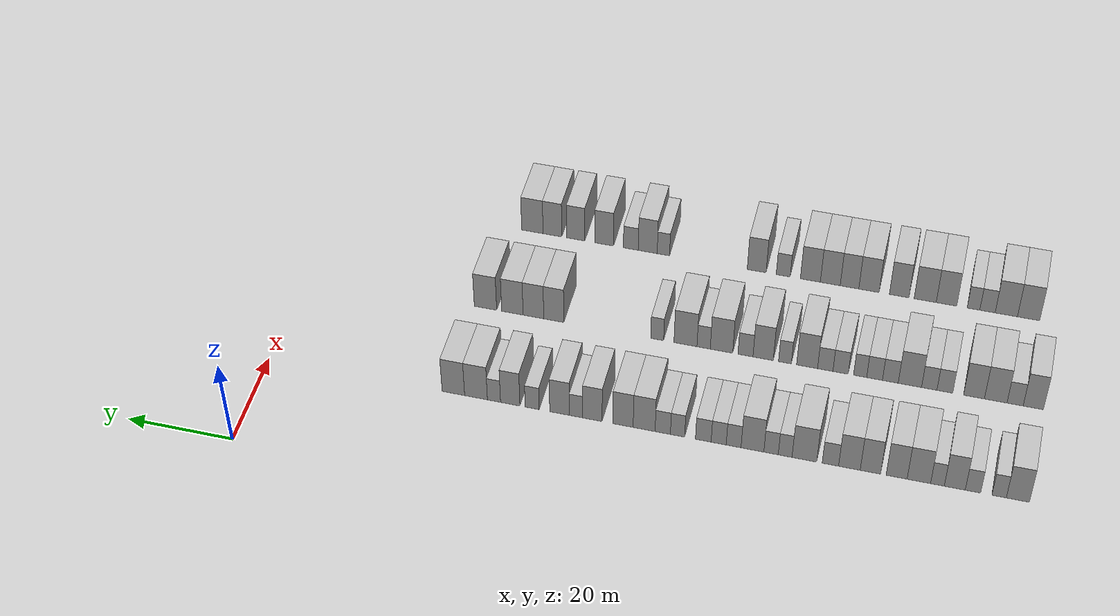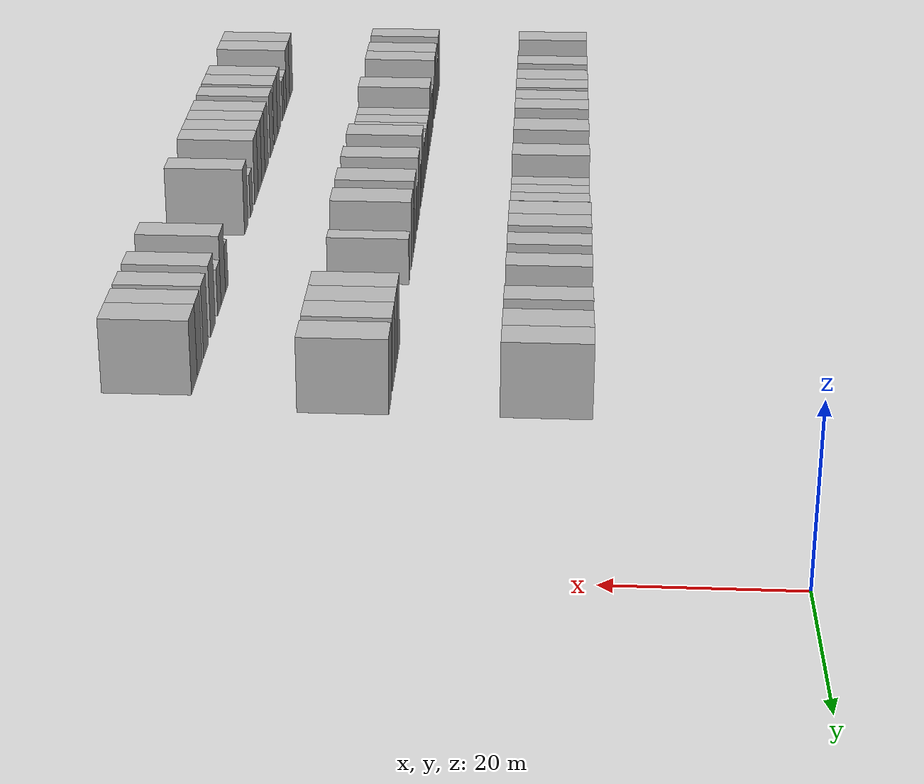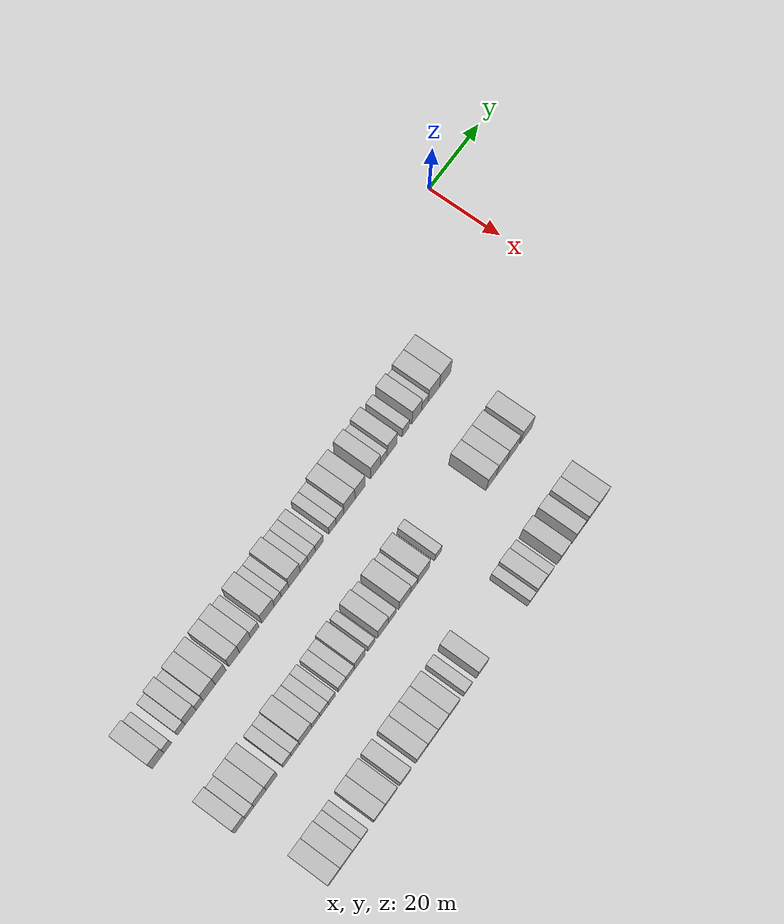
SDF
<sdf version="1.6">
 <world name="default">
  <model name="building_25">
   <static>1</static>
   <pose>25.0000 -139.9030 0 0.000000 0.000000 0.000000</pose>
   <link name="link">
    <pose>0 0 4.50 0 0 0</pose>
    <collision name="collision"><geometry><box><size>10.0000 4.0716 9.0000</size></box></geometry></collision>
    <visual name="visual">
     <cast_shadows>0</cast_shadows>
     <geometry><box><size>10.0000 4.0716 9.0000</size></box></geometry>
     <material>
      <script>
       <uri>model://HANNAS_wall/materials/scripts</uri>
       <uri>model://HANNAS_wall/materials/textures</uri>
       <name>vrc/HANNAS_wall</name>
      </script>
     </material>
    </visual>
   </link>
  </model>
  <model name="building_26">
   <static>1</static>
   <pose>25.0000 -136.5946 0 0.000000 0.000000 0.000000</pose>
   <link name="link">
    <pose>0 0 3.00 0 0 0</pose>
    <collision name="collision"><geometry><box><size>10.0000 2.5452 6.0000</size></box></geometry></collision>
    <visual name="visual">
     <cast_shadows>0</cast_shadows>
     <geometry><box><size>10.0000 2.5452 6.0000</size></box></geometry>
     <material>
      <script>
       <uri>model://HANNAS_wall/materials/scripts</uri>
       <uri>model://HANNAS_wall/materials/textures</uri>
       <name>vrc/HANNAS_wall</name>
      </script>
     </material>
    </visual>
   </link>
  </model>
  <model name="building_27">
   <static>1</static>
   <pose>25.0000 -131.9562 0 0.000000 0.000000 0.000000</pose>
   <link name="link">
    <pose>0 0 3.00 0 0 0</pose>
    <collision name="collision"><geometry><box><size>10.0000 2.7318 6.0000</size></box></geometry></collision>
    <visual name="visual">
     <cast_shadows>0</cast_shadows>
     <geometry><box><size>10.0000 2.7318 6.0000</size></box></geometry>
     <material>
      <script>
       <uri>model://HANNAS_wall/materials/scripts</uri>
       <uri>model://HANNAS_wall/materials/textures</uri>
       <name>vrc/HANNAS_wall</name>
      </script>
     </material>
    </visual>
   </link>
  </model>
  <model name="building_28">
   <static>1</static>
   <pose>25.0000 -128.7188 0 0.000000 0.000000 0.000000</pose>
   <link name="link">
    <pose>0 0 4.50 0 0 0</pose>
    <collision name="collision"><geometry><box><size>10.0000 3.7429 9.0000</size></box></geometry></collision>
    <visual name="visual">
     <cast_shadows>0</cast_shadows>
     <geometry><box><size>10.0000 3.7429 9.0000</size></box></geometry>
     <material>
      <script>
       <uri>model://HANNAS_wall/materials/scripts</uri>
       <uri>model://HANNAS_wall/materials/textures</uri>
       <name>vrc/HANNAS_wall</name>
      </script>
     </material>
    </visual>
   </link>
  </model>
  <model name="building_29">
   <static>1</static>
   <pose>25.0000 -125.6237 0 0.000000 0.000000 0.000000</pose>
   <link name="link">
    <pose>0 0 3.00 0 0 0</pose>
    <collision name="collision"><geometry><box><size>10.0000 2.4472 6.0000</size></box></geometry></collision>
    <visual name="visual">
     <cast_shadows>0</cast_shadows>
     <geometry><box><size>10.0000 2.4472 6.0000</size></box></geometry>
     <material>
      <script>
       <uri>model://HANNAS_wall/materials/scripts</uri>
       <uri>model://HANNAS_wall/materials/textures</uri>
       <name>vrc/HANNAS_wall</name>
      </script>
     </material>
    </visual>
   </link>
  </model>
  <model name="building_30">
   <static>1</static>
   <pose>25.0000 -122.2991 0 0.000000 0.000000 0.000000</pose>
   <link name="link">
    <pose>0 0 4.50 0 0 0</pose>
    <collision name="collision"><geometry><box><size>10.0000 4.2020 9.0000</size></box></geometry></collision>
    <visual name="visual">
     <cast_shadows>0</cast_shadows>
     <geometry><box><size>10.0000 4.2020 9.0000</size></box></geometry>
     <material>
      <script>
       <uri>model://HANNAS_wall/materials/scripts</uri>
       <uri>model://HANNAS_wall/materials/textures</uri>
       <name>vrc/HANNAS_wall</name>
      </script>
     </material>
    </visual>
   </link>
  </model>
  <model name="building_31">
   <static>1</static>
   <pose>25.0000 -118.3108 0 0.000000 0.000000 0.000000</pose>
   <link name="link">
    <pose>0 0 4.50 0 0 0</pose>
    <collision name="collision"><geometry><box><size>10.0000 3.7748 9.0000</size></box></geometry></collision>
    <visual name="visual">
     <cast_shadows>0</cast_shadows>
     <geometry><box><size>10.0000 3.7748 9.0000</size></box></geometry>
     <material>
      <script>
       <uri>model://HANNAS_wall/materials/scripts</uri>
       <uri>model://HANNAS_wall/materials/textures</uri>
       <name>vrc/HANNAS_wall</name>
      </script>
     </material>
    </visual>
   </link>
  </model>
  <model name="building_32">
   <static>1</static>
   <pose>25.0000 -113.5876 0 0.000000 0.000000 0.000000</pose>
   <link name="link">
    <pose>0 0 4.50 0 0 0</pose>
    <collision name="collision"><geometry><box><size>10.0000 3.6714 9.0000</size></box></geometry></collision>
    <visual name="visual">
     <cast_shadows>0</cast_shadows>
     <geometry><box><size>10.0000 3.6714 9.0000</size></box></geometry>
     <material>
      <script>
       <uri>model://HANNAS_wall/materials/scripts</uri>
       <uri>model://HANNAS_wall/materials/textures</uri>
       <name>vrc/HANNAS_wall</name>
      </script>
     </material>
    </visual>
   </link>
  </model>
  <model name="building_33">
   <static>1</static>
   <pose>25.0000 -109.7929 0 0.000000 0.000000 0.000000</pose>
   <link name="link">
    <pose>0 0 4.50 0 0 0</pose>
    <collision name="collision"><geometry><box><size>10.0000 3.9181 9.0000</size></box></geometry></collision>
    <visual name="visual">
     <cast_shadows>0</cast_shadows>
     <geometry><box><size>10.0000 3.9181 9.0000</size></box></geometry>
     <material>
      <script>
       <uri>model://HANNAS_wall/materials/scripts</uri>
       <uri>model://HANNAS_wall/materials/textures</uri>
       <name>vrc/HANNAS_wall</name>
      </script>
     </material>
    </visual>
   </link>
  </model>
  <model name="building_34">
   <static>1</static>
   <pose>25.0000 -106.3459 0 0.000000 0.000000 0.000000</pose>
   <link name="link">
    <pose>0 0 3.00 0 0 0</pose>
    <collision name="collision"><geometry><box><size>10.0000 2.9760 6.0000</size></box></geometry></collision>
    <visual name="visual">
     <cast_shadows>0</cast_shadows>
     <geometry><box><size>10.0000 2.9760 6.0000</size></box></geometry>
     <material>
      <script>
       <uri>model://HANNAS_wall/materials/scripts</uri>
       <uri>model://HANNAS_wall/materials/textures</uri>
       <name>vrc/HANNAS_wall</name>
      </script>
     </material>
    </visual>
   </link>
  </model>
  <model name="building_35">
   <static>1</static>
   <pose>25.0000 -101.6116 0 0.000000 0.000000 0.000000</pose>
   <link name="link">
    <pose>0 0 4.50 0 0 0</pose>
    <collision name="collision"><geometry><box><size>10.0000 4.4926 9.0000</size></box></geometry></collision>
    <visual name="visual">
     <cast_shadows>0</cast_shadows>
     <geometry><box><size>10.0000 4.4926 9.0000</size></box></geometry>
     <material>
      <script>
       <uri>model://HANNAS_wall/materials/scripts</uri>
       <uri>model://HANNAS_wall/materials/textures</uri>
       <name>vrc/HANNAS_wall</name>
      </script>
     </material>
    </visual>
   </link>
  </model>
  <model name="building_36">
   <static>1</static>
   <pose>25.0000 -98.1097 0 0.000000 0.000000 0.000000</pose>
   <link name="link">
    <pose>0 0 3.00 0 0 0</pose>
    <collision name="collision"><geometry><box><size>10.0000 2.5113 6.0000</size></box></geometry></collision>
    <visual name="visual">
     <cast_shadows>0</cast_shadows>
     <geometry><box><size>10.0000 2.5113 6.0000</size></box></geometry>
     <material>
      <script>
       <uri>model://HANNAS_wall/materials/scripts</uri>
       <uri>model://HANNAS_wall/materials/textures</uri>
       <name>vrc/HANNAS_wall</name>
      </script>
     </material>
    </visual>
   </link>
  </model>
  <model name="building_37">
   <static>1</static>
   <pose>25.0000 -95.5361 0 0.000000 0.000000 0.000000</pose>
   <link name="link">
    <pose>0 0 3.00 0 0 0</pose>
    <collision name="collision"><geometry><box><size>10.0000 2.6359 6.0000</size></box></geometry></collision>
    <visual name="visual">
     <cast_shadows>0</cast_shadows>
     <geometry><box><size>10.0000 2.6359 6.0000</size></box></geometry>
     <material>
      <script>
       <uri>model://HANNAS_wall/materials/scripts</uri>
       <uri>model://HANNAS_wall/materials/textures</uri>
       <name>vrc/HANNAS_wall</name>
      </script>
     </material>
    </visual>
   </link>
  </model>
  <model name="building_38">
   <static>1</static>
   <pose>25.0000 -92.1232 0 0.000000 0.000000 0.000000</pose>
   <link name="link">
    <pose>0 0 4.50 0 0 0</pose>
    <collision name="collision"><geometry><box><size>10.0000 4.1899 9.0000</size></box></geometry></collision>
    <visual name="visual">
     <cast_shadows>0</cast_shadows>
     <geometry><box><size>10.0000 4.1899 9.0000</size></box></geometry>
     <material>
      <script>
       <uri>model://HANNAS_wall/materials/scripts</uri>
       <uri>model://HANNAS_wall/materials/textures</uri>
       <name>vrc/HANNAS_wall</name>
      </script>
     </material>
    </visual>
   </link>
  </model>
  <model name="building_39">
   <static>1</static>
   <pose>25.0000 -88.6636 0 0.000000 0.000000 0.000000</pose>
   <link name="link">
    <pose>0 0 3.00 0 0 0</pose>
    <collision name="collision"><geometry><box><size>10.0000 2.7293 6.0000</size></box></geometry></collision>
    <visual name="visual">
     <cast_shadows>0</cast_shadows>
     <geometry><box><size>10.0000 2.7293 6.0000</size></box></geometry>
     <material>
      <script>
       <uri>model://HANNAS_wall/materials/scripts</uri>
       <uri>model://HANNAS_wall/materials/textures</uri>
       <name>vrc/HANNAS_wall</name>
      </script>
     </material>
    </visual>
   </link>
  </model>
  <model name="building_40">
   <static>1</static>
   <pose>25.0000 -85.9057 0 0.000000 0.000000 0.000000</pose>
   <link name="link">
    <pose>0 0 3.00 0 0 0</pose>
    <collision name="collision"><geometry><box><size>10.0000 2.7864 6.0000</size></box></geometry></collision>
    <visual name="visual">
     <cast_shadows>0</cast_shadows>
     <geometry><box><size>10.0000 2.7864 6.0000</size></box></geometry>
     <material>
      <script>
       <uri>model://HANNAS_wall/materials/scripts</uri>
       <uri>model://HANNAS_wall/materials/textures</uri>
       <name>vrc/HANNAS_wall</name>
      </script>
     </material>
    </visual>
   </link>
  </model>
  <model name="building_41">
   <static>1</static>
   <pose>25.0000 -83.0607 0 0.000000 0.000000 0.000000</pose>
   <link name="link">
    <pose>0 0 3.00 0 0 0</pose>
    <collision name="collision"><geometry><box><size>10.0000 2.9037 6.0000</size></box></geometry></collision>
    <visual name="visual">
     <cast_shadows>0</cast_shadows>
     <geometry><box><size>10.0000 2.9037 6.0000</size></box></geometry>
     <material>
      <script>
       <uri>model://HANNAS_wall/materials/scripts</uri>
       <uri>model://HANNAS_wall/materials/textures</uri>
       <name>vrc/HANNAS_wall</name>
      </script>
     </material>
    </visual>
   </link>
  </model>
  <model name="building_42">
   <static>1</static>
   <pose>25.0000 -78.2863 0 0.000000 0.000000 0.000000</pose>
   <link name="link">
    <pose>0 0 3.00 0 0 0</pose>
    <collision name="collision"><geometry><box><size>10.0000 2.6452 6.0000</size></box></geometry></collision>
    <visual name="visual">
     <cast_shadows>0</cast_shadows>
     <geometry><box><size>10.0000 2.6452 6.0000</size></box></geometry>
     <material>
      <script>
       <uri>model://HANNAS_wall/materials/scripts</uri>
       <uri>model://HANNAS_wall/materials/textures</uri>
       <name>vrc/HANNAS_wall</name>
      </script>
     </material>
    </visual>
   </link>
  </model>
  <model name="building_43">
   <static>1</static>
   <pose>25.0000 -75.5401 0 0.000000 0.000000 0.000000</pose>
   <link name="link">
    <pose>0 0 3.00 0 0 0</pose>
    <collision name="collision"><geometry><box><size>10.0000 2.8470 6.0000</size></box></geometry></collision>
    <visual name="visual">
     <cast_shadows>0</cast_shadows>
     <geometry><box><size>10.0000 2.8470 6.0000</size></box></geometry>
     <material>
      <script>
       <uri>model://HANNAS_wall/materials/scripts</uri>
       <uri>model://HANNAS_wall/materials/textures</uri>
       <name>vrc/HANNAS_wall</name>
      </script>
     </material>
    </visual>
   </link>
  </model>
  <model name="building_44">
   <static>1</static>
   <pose>25.0000 -72.0647 0 0.000000 0.000000 0.000000</pose>
   <link name="link">
    <pose>0 0 4.50 0 0 0</pose>
    <collision name="collision"><geometry><box><size>10.0000 4.1038 9.0000</size></box></geometry></collision>
    <visual name="visual">
     <cast_shadows>0</cast_shadows>
     <geometry><box><size>10.0000 4.1038 9.0000</size></box></geometry>
     <material>
      <script>
       <uri>model://HANNAS_wall/materials/scripts</uri>
       <uri>model://HANNAS_wall/materials/textures</uri>
       <name>vrc/HANNAS_wall</name>
      </script>
     </material>
    </visual>
   </link>
  </model>
  <model name="building_45">
   <static>1</static>
   <pose>25.0000 -68.1016 0 0.000000 0.000000 0.000000</pose>
   <link name="link">
    <pose>0 0 4.50 0 0 0</pose>
    <collision name="collision"><geometry><box><size>10.0000 3.8224 9.0000</size></box></geometry></collision>
    <visual name="visual">
     <cast_shadows>0</cast_shadows>
     <geometry><box><size>10.0000 3.8224 9.0000</size></box></geometry>
     <material>
      <script>
       <uri>model://HANNAS_wall/materials/scripts</uri>
       <uri>model://HANNAS_wall/materials/textures</uri>
       <name>vrc/HANNAS_wall</name>
      </script>
     </material>
    </visual>
   </link>
  </model>
  <model name="building_46">
   <static>1</static>
   <pose>25.0000 -62.3664 0 0.000000 0.000000 0.000000</pose>
   <link name="link">
    <pose>0 0 4.50 0 0 0</pose>
    <collision name="collision"><geometry><box><size>10.0000 3.6479 9.0000</size></box></geometry></collision>
    <visual name="visual">
     <cast_shadows>0</cast_shadows>
     <geometry><box><size>10.0000 3.6479 9.0000</size></box></geometry>
     <material>
      <script>
       <uri>model://HANNAS_wall/materials/scripts</uri>
       <uri>model://HANNAS_wall/materials/textures</uri>
       <name>vrc/HANNAS_wall</name>
      </script>
     </material>
    </visual>
   </link>
  </model>
  <model name="building_47">
   <static>1</static>
   <pose>25.0000 -59.2812 0 0.000000 0.000000 0.000000</pose>
   <link name="link">
    <pose>0 0 3.00 0 0 0</pose>
    <collision name="collision"><geometry><box><size>10.0000 2.5225 6.0000</size></box></geometry></collision>
    <visual name="visual">
     <cast_shadows>0</cast_shadows>
     <geometry><box><size>10.0000 2.5225 6.0000</size></box></geometry>
     <material>
      <script>
       <uri>model://HANNAS_wall/materials/scripts</uri>
       <uri>model://HANNAS_wall/materials/textures</uri>
       <name>vrc/HANNAS_wall</name>
      </script>
     </material>
    </visual>
   </link>
  </model>
  <model name="building_48">
   <static>1</static>
   <pose>25.0000 -56.1685 0 0.000000 0.000000 0.000000</pose>
   <link name="link">
    <pose>0 0 4.50 0 0 0</pose>
    <collision name="collision"><geometry><box><size>10.0000 3.7029 9.0000</size></box></geometry></collision>
    <visual name="visual">
     <cast_shadows>0</cast_shadows>
     <geometry><box><size>10.0000 3.7029 9.0000</size></box></geometry>
     <material>
      <script>
       <uri>model://HANNAS_wall/materials/scripts</uri>
       <uri>model://HANNAS_wall/materials/textures</uri>
       <name>vrc/HANNAS_wall</name>
      </script>
     </material>
    </visual>
   </link>
  </model>
  <model name="building_49">
   <static>1</static>
   <pose>25.0000 -50.9868 0 0.000000 0.000000 0.000000</pose>
   <link name="link">
    <pose>0 0 3.00 0 0 0</pose>
    <collision name="collision"><geometry><box><size>10.0000 2.6606 6.0000</size></box></geometry></collision>
    <visual name="visual">
     <cast_shadows>0</cast_shadows>
     <geometry><box><size>10.0000 2.6606 6.0000</size></box></geometry>
     <material>
      <script>
       <uri>model://HANNAS_wall/materials/scripts</uri>
       <uri>model://HANNAS_wall/materials/textures</uri>
       <name>vrc/HANNAS_wall</name>
      </script>
     </material>
    </visual>
   </link>
  </model>
  <model name="building_50">
   <static>1</static>
   <pose>25.0000 -46.8098 0 0.000000 0.000000 0.000000</pose>
   <link name="link">
    <pose>0 0 4.50 0 0 0</pose>
    <collision name="collision"><geometry><box><size>10.0000 3.6933 9.0000</size></box></geometry></collision>
    <visual name="visual">
     <cast_shadows>0</cast_shadows>
     <geometry><box><size>10.0000 3.6933 9.0000</size></box></geometry>
     <material>
      <script>
       <uri>model://HANNAS_wall/materials/scripts</uri>
       <uri>model://HANNAS_wall/materials/textures</uri>
       <name>vrc/HANNAS_wall</name>
      </script>
     </material>
    </visual>
   </link>
  </model>
  <model name="building_51">
   <static>1</static>
   <pose>25.0000 -43.7116 0 0.000000 0.000000 0.000000</pose>
   <link name="link">
    <pose>0 0 3.00 0 0 0</pose>
    <collision name="collision"><geometry><box><size>10.0000 2.5031 6.0000</size></box></geometry></collision>
    <visual name="visual">
     <cast_shadows>0</cast_shadows>
     <geometry><box><size>10.0000 2.5031 6.0000</size></box></geometry>
     <material>
      <script>
       <uri>model://HANNAS_wall/materials/scripts</uri>
       <uri>model://HANNAS_wall/materials/textures</uri>
       <name>vrc/HANNAS_wall</name>
      </script>
     </material>
    </visual>
   </link>
  </model>
  <model name="building_52">
   <static>1</static>
   <pose>25.0000 -40.2781 0 0.000000 0.000000 0.000000</pose>
   <link name="link">
    <pose>0 0 4.50 0 0 0</pose>
    <collision name="collision"><geometry><box><size>10.0000 4.3639 9.0000</size></box></geometry></collision>
    <visual name="visual">
     <cast_shadows>0</cast_shadows>
     <geometry><box><size>10.0000 4.3639 9.0000</size></box></geometry>
     <material>
      <script>
       <uri>model://HANNAS_wall/materials/scripts</uri>
       <uri>model://HANNAS_wall/materials/textures</uri>
       <name>vrc/HANNAS_wall</name>
      </script>
     </material>
    </visual>
   </link>
  </model>
  <model name="building_53">
   <static>1</static>
   <pose>25.0000 -35.9338 0 0.000000 0.000000 0.000000</pose>
   <link name="link">
    <pose>0 0 4.50 0 0 0</pose>
    <collision name="collision"><geometry><box><size>10.0000 4.3248 9.0000</size></box></geometry></collision>
    <visual name="visual">
     <cast_shadows>0</cast_shadows>
     <geometry><box><size>10.0000 4.3248 9.0000</size></box></geometry>
     <material>
      <script>
       <uri>model://HANNAS_wall/materials/scripts</uri>
       <uri>model://HANNAS_wall/materials/textures</uri>
       <name>vrc/HANNAS_wall</name>
      </script>
     </material>
    </visual>
   </link>
  </model>
  <model name="building_147">
   <static>1</static>
   <pose>47.0000 -140.3884 0 0.000000 0.000000 0.000000</pose>
   <link name="link">
    <pose>0 0 4.50 0 0 0</pose>
    <collision name="collision"><geometry><box><size>10.0000 3.7102 9.0000</size></box></geometry></collision>
    <visual name="visual">
     <cast_shadows>0</cast_shadows>
     <geometry><box><size>10.0000 3.7102 9.0000</size></box></geometry>
     <material>
      <script>
       <uri>model://HANNAS_wall/materials/scripts</uri>
       <uri>model://HANNAS_wall/materials/textures</uri>
       <name>vrc/HANNAS_wall</name>
      </script>
     </material>
    </visual>
   </link>
  </model>
  <model name="building_148">
   <static>1</static>
   <pose>47.0000 -137.0513 0 0.000000 0.000000 0.000000</pose>
   <link name="link">
    <pose>0 0 3.00 0 0 0</pose>
    <collision name="collision"><geometry><box><size>10.0000 2.9640 6.0000</size></box></geometry></collision>
    <visual name="visual">
     <cast_shadows>0</cast_shadows>
     <geometry><box><size>10.0000 2.9640 6.0000</size></box></geometry>
     <material>
      <script>
       <uri>model://HANNAS_wall/materials/scripts</uri>
       <uri>model://HANNAS_wall/materials/textures</uri>
       <name>vrc/HANNAS_wall</name>
      </script>
     </material>
    </visual>
   </link>
  </model>
  <model name="building_149">
   <static>1</static>
   <pose>47.0000 -133.4928 0 0.000000 0.000000 0.000000</pose>
   <link name="link">
    <pose>0 0 4.50 0 0 0</pose>
    <collision name="collision"><geometry><box><size>10.0000 4.1530 9.0000</size></box></geometry></collision>
    <visual name="visual">
     <cast_shadows>0</cast_shadows>
     <geometry><box><size>10.0000 4.1530 9.0000</size></box></geometry>
     <material>
      <script>
       <uri>model://HANNAS_wall/materials/scripts</uri>
       <uri>model://HANNAS_wall/materials/textures</uri>
       <name>vrc/HANNAS_wall</name>
      </script>
     </material>
    </visual>
   </link>
  </model>
  <model name="building_150">
   <static>1</static>
   <pose>47.0000 -129.4914 0 0.000000 0.000000 0.000000</pose>
   <link name="link">
    <pose>0 0 4.50 0 0 0</pose>
    <collision name="collision"><geometry><box><size>10.0000 3.8499 9.0000</size></box></geometry></collision>
    <visual name="visual">
     <cast_shadows>0</cast_shadows>
     <geometry><box><size>10.0000 3.8499 9.0000</size></box></geometry>
     <material>
      <script>
       <uri>model://HANNAS_wall/materials/scripts</uri>
       <uri>model://HANNAS_wall/materials/textures</uri>
       <name>vrc/HANNAS_wall</name>
      </script>
     </material>
    </visual>
   </link>
  </model>
  <model name="building_151">
   <static>1</static>
   <pose>47.0000 -124.1032 0 0.000000 0.000000 0.000000</pose>
   <link name="link">
    <pose>0 0 3.00 0 0 0</pose>
    <collision name="collision"><geometry><box><size>10.0000 2.9266 6.0000</size></box></geometry></collision>
    <visual name="visual">
     <cast_shadows>0</cast_shadows>
     <geometry><box><size>10.0000 2.9266 6.0000</size></box></geometry>
     <material>
      <script>
       <uri>model://HANNAS_wall/materials/scripts</uri>
       <uri>model://HANNAS_wall/materials/textures</uri>
       <name>vrc/HANNAS_wall</name>
      </script>
     </material>
    </visual>
   </link>
  </model>
  <model name="building_152">
   <static>1</static>
   <pose>47.0000 -121.2081 0 0.000000 0.000000 0.000000</pose>
   <link name="link">
    <pose>0 0 3.00 0 0 0</pose>
    <collision name="collision"><geometry><box><size>10.0000 2.8635 6.0000</size></box></geometry></collision>
    <visual name="visual">
     <cast_shadows>0</cast_shadows>
     <geometry><box><size>10.0000 2.8635 6.0000</size></box></geometry>
     <material>
      <script>
       <uri>model://HANNAS_wall/materials/scripts</uri>
       <uri>model://HANNAS_wall/materials/textures</uri>
       <name>vrc/HANNAS_wall</name>
      </script>
     </material>
    </visual>
   </link>
  </model>
  <model name="building_153">
   <static>1</static>
   <pose>47.0000 -117.6011 0 0.000000 0.000000 0.000000</pose>
   <link name="link">
    <pose>0 0 4.50 0 0 0</pose>
    <collision name="collision"><geometry><box><size>10.0000 4.3505 9.0000</size></box></geometry></collision>
    <visual name="visual">
     <cast_shadows>0</cast_shadows>
     <geometry><box><size>10.0000 4.3505 9.0000</size></box></geometry>
     <material>
      <script>
       <uri>model://HANNAS_wall/materials/scripts</uri>
       <uri>model://HANNAS_wall/materials/textures</uri>
       <name>vrc/HANNAS_wall</name>
      </script>
     </material>
    </visual>
   </link>
  </model>
  <model name="building_154">
   <static>1</static>
   <pose>47.0000 -113.9526 0 0.000000 0.000000 0.000000</pose>
   <link name="link">
    <pose>0 0 3.00 0 0 0</pose>
    <collision name="collision"><geometry><box><size>10.0000 2.9466 6.0000</size></box></geometry></collision>
    <visual name="visual">
     <cast_shadows>0</cast_shadows>
     <geometry><box><size>10.0000 2.9466 6.0000</size></box></geometry>
     <material>
      <script>
       <uri>model://HANNAS_wall/materials/scripts</uri>
       <uri>model://HANNAS_wall/materials/textures</uri>
       <name>vrc/HANNAS_wall</name>
      </script>
     </material>
    </visual>
   </link>
  </model>
  <model name="building_155">
   <static>1</static>
   <pose>47.0000 -111.0038 0 0.000000 0.000000 0.000000</pose>
   <link name="link">
    <pose>0 0 3.00 0 0 0</pose>
    <collision name="collision"><geometry><box><size>10.0000 2.9509 6.0000</size></box></geometry></collision>
    <visual name="visual">
     <cast_shadows>0</cast_shadows>
     <geometry><box><size>10.0000 2.9509 6.0000</size></box></geometry>
     <material>
      <script>
       <uri>model://HANNAS_wall/materials/scripts</uri>
       <uri>model://HANNAS_wall/materials/textures</uri>
       <name>vrc/HANNAS_wall</name>
      </script>
     </material>
    </visual>
   </link>
  </model>
  <model name="building_156">
   <static>1</static>
   <pose>47.0000 -108.2922 0 0.000000 0.000000 0.000000</pose>
   <link name="link">
    <pose>0 0 3.00 0 0 0</pose>
    <collision name="collision"><geometry><box><size>10.0000 2.4724 6.0000</size></box></geometry></collision>
    <visual name="visual">
     <cast_shadows>0</cast_shadows>
     <geometry><box><size>10.0000 2.4724 6.0000</size></box></geometry>
     <material>
      <script>
       <uri>model://HANNAS_wall/materials/scripts</uri>
       <uri>model://HANNAS_wall/materials/textures</uri>
       <name>vrc/HANNAS_wall</name>
      </script>
     </material>
    </visual>
   </link>
  </model>
  <model name="building_157">
   <static>1</static>
   <pose>47.0000 -104.6186 0 0.000000 0.000000 0.000000</pose>
   <link name="link">
    <pose>0 0 3.00 0 0 0</pose>
    <collision name="collision"><geometry><box><size>10.0000 2.8748 6.0000</size></box></geometry></collision>
    <visual name="visual">
     <cast_shadows>0</cast_shadows>
     <geometry><box><size>10.0000 2.8748 6.0000</size></box></geometry>
     <material>
      <script>
       <uri>model://HANNAS_wall/materials/scripts</uri>
       <uri>model://HANNAS_wall/materials/textures</uri>
       <name>vrc/HANNAS_wall</name>
      </script>
     </material>
    </visual>
   </link>
  </model>
  <model name="building_158">
   <static>1</static>
   <pose>47.0000 -101.7303 0 0.000000 0.000000 0.000000</pose>
   <link name="link">
    <pose>0 0 3.00 0 0 0</pose>
    <collision name="collision"><geometry><box><size>10.0000 2.9018 6.0000</size></box></geometry></collision>
    <visual name="visual">
     <cast_shadows>0</cast_shadows>
     <geometry><box><size>10.0000 2.9018 6.0000</size></box></geometry>
     <material>
      <script>
       <uri>model://HANNAS_wall/materials/scripts</uri>
       <uri>model://HANNAS_wall/materials/textures</uri>
       <name>vrc/HANNAS_wall</name>
      </script>
     </material>
    </visual>
   </link>
  </model>
  <model name="building_159">
   <static>1</static>
   <pose>47.0000 -98.2994 0 0.000000 0.000000 0.000000</pose>
   <link name="link">
    <pose>0 0 4.50 0 0 0</pose>
    <collision name="collision"><geometry><box><size>10.0000 3.9601 9.0000</size></box></geometry></collision>
    <visual name="visual">
     <cast_shadows>0</cast_shadows>
     <geometry><box><size>10.0000 3.9601 9.0000</size></box></geometry>
     <material>
      <script>
       <uri>model://HANNAS_wall/materials/scripts</uri>
       <uri>model://HANNAS_wall/materials/textures</uri>
       <name>vrc/HANNAS_wall</name>
      </script>
     </material>
    </visual>
   </link>
  </model>
  <model name="building_160">
   <static>1</static>
   <pose>47.0000 -94.1018 0 0.000000 0.000000 0.000000</pose>
   <link name="link">
    <pose>0 0 3.00 0 0 0</pose>
    <collision name="collision"><geometry><box><size>10.0000 2.4349 6.0000</size></box></geometry></collision>
    <visual name="visual">
     <cast_shadows>0</cast_shadows>
     <geometry><box><size>10.0000 2.4349 6.0000</size></box></geometry>
     <material>
      <script>
       <uri>model://HANNAS_wall/materials/scripts</uri>
       <uri>model://HANNAS_wall/materials/textures</uri>
       <name>vrc/HANNAS_wall</name>
      </script>
     </material>
    </visual>
   </link>
  </model>
  <model name="building_161">
   <static>1</static>
   <pose>47.0000 -89.9531 0 0.000000 0.000000 0.000000</pose>
   <link name="link">
    <pose>0 0 4.50 0 0 0</pose>
    <collision name="collision"><geometry><box><size>10.0000 3.8627 9.0000</size></box></geometry></collision>
    <visual name="visual">
     <cast_shadows>0</cast_shadows>
     <geometry><box><size>10.0000 3.8627 9.0000</size></box></geometry>
     <material>
      <script>
       <uri>model://HANNAS_wall/materials/scripts</uri>
       <uri>model://HANNAS_wall/materials/textures</uri>
       <name>vrc/HANNAS_wall</name>
      </script>
     </material>
    </visual>
   </link>
  </model>
  <model name="building_162">
   <static>1</static>
   <pose>47.0000 -86.5851 0 0.000000 0.000000 0.000000</pose>
   <link name="link">
    <pose>0 0 3.00 0 0 0</pose>
    <collision name="collision"><geometry><box><size>10.0000 2.8732 6.0000</size></box></geometry></collision>
    <visual name="visual">
     <cast_shadows>0</cast_shadows>
     <geometry><box><size>10.0000 2.8732 6.0000</size></box></geometry>
     <material>
      <script>
       <uri>model://HANNAS_wall/materials/scripts</uri>
       <uri>model://HANNAS_wall/materials/textures</uri>
       <name>vrc/HANNAS_wall</name>
      </script>
     </material>
    </visual>
   </link>
  </model>
  <model name="building_163">
   <static>1</static>
   <pose>47.0000 -81.9961 0 0.000000 0.000000 0.000000</pose>
   <link name="link">
    <pose>0 0 4.50 0 0 0</pose>
    <collision name="collision"><geometry><box><size>10.0000 4.3047 9.0000</size></box></geometry></collision>
    <visual name="visual">
     <cast_shadows>0</cast_shadows>
     <geometry><box><size>10.0000 4.3047 9.0000</size></box></geometry>
     <material>
      <script>
       <uri>model://HANNAS_wall/materials/scripts</uri>
       <uri>model://HANNAS_wall/materials/textures</uri>
       <name>vrc/HANNAS_wall</name>
      </script>
     </material>
    </visual>
   </link>
  </model>
  <model name="building_164">
   <static>1</static>
   <pose>47.0000 -78.5674 0 0.000000 0.000000 0.000000</pose>
   <link name="link">
    <pose>0 0 3.00 0 0 0</pose>
    <collision name="collision"><geometry><box><size>10.0000 2.5528 6.0000</size></box></geometry></collision>
    <visual name="visual">
     <cast_shadows>0</cast_shadows>
     <geometry><box><size>10.0000 2.5528 6.0000</size></box></geometry>
     <material>
      <script>
       <uri>model://HANNAS_wall/materials/scripts</uri>
       <uri>model://HANNAS_wall/materials/textures</uri>
       <name>vrc/HANNAS_wall</name>
      </script>
     </material>
    </visual>
   </link>
  </model>
  <model name="building_165">
   <static>1</static>
   <pose>47.0000 -75.0735 0 0.000000 0.000000 0.000000</pose>
   <link name="link">
    <pose>0 0 4.50 0 0 0</pose>
    <collision name="collision"><geometry><box><size>10.0000 4.4350 9.0000</size></box></geometry></collision>
    <visual name="visual">
     <cast_shadows>0</cast_shadows>
     <geometry><box><size>10.0000 4.4350 9.0000</size></box></geometry>
     <material>
      <script>
       <uri>model://HANNAS_wall/materials/scripts</uri>
       <uri>model://HANNAS_wall/materials/textures</uri>
       <name>vrc/HANNAS_wall</name>
      </script>
     </material>
    </visual>
   </link>
  </model>
  <model name="building_166">
   <static>1</static>
   <pose>47.0000 -69.6040 0 0.000000 0.000000 0.000000</pose>
   <link name="link">
    <pose>0 0 3.00 0 0 0</pose>
    <collision name="collision"><geometry><box><size>10.0000 2.5039 6.0000</size></box></geometry></collision>
    <visual name="visual">
     <cast_shadows>0</cast_shadows>
     <geometry><box><size>10.0000 2.5039 6.0000</size></box></geometry>
     <material>
      <script>
       <uri>model://HANNAS_wall/materials/scripts</uri>
       <uri>model://HANNAS_wall/materials/textures</uri>
       <name>vrc/HANNAS_wall</name>
      </script>
     </material>
    </visual>
   </link>
  </model>
  <model name="building_167">
   <static>1</static>
   <pose>47.0000 -49.4347 0 0.000000 0.000000 0.000000</pose>
   <link name="link">
    <pose>0 0 4.50 0 0 0</pose>
    <collision name="collision"><geometry><box><size>10.0000 3.9449 9.0000</size></box></geometry></collision>
    <visual name="visual">
     <cast_shadows>0</cast_shadows>
     <geometry><box><size>10.0000 3.9449 9.0000</size></box></geometry>
     <material>
      <script>
       <uri>model://HANNAS_wall/materials/scripts</uri>
       <uri>model://HANNAS_wall/materials/textures</uri>
       <name>vrc/HANNAS_wall</name>
      </script>
     </material>
    </visual>
   </link>
  </model>
  <model name="building_168">
   <static>1</static>
   <pose>47.0000 -45.4252 0 0.000000 0.000000 0.000000</pose>
   <link name="link">
    <pose>0 0 4.50 0 0 0</pose>
    <collision name="collision"><geometry><box><size>10.0000 4.0742 9.0000</size></box></geometry></collision>
    <visual name="visual">
     <cast_shadows>0</cast_shadows>
     <geometry><box><size>10.0000 4.0742 9.0000</size></box></geometry>
     <material>
      <script>
       <uri>model://HANNAS_wall/materials/scripts</uri>
       <uri>model://HANNAS_wall/materials/textures</uri>
       <name>vrc/HANNAS_wall</name>
      </script>
     </material>
    </visual>
   </link>
  </model>
  <model name="building_169">
   <static>1</static>
   <pose>47.0000 -41.2732 0 0.000000 0.000000 0.000000</pose>
   <link name="link">
    <pose>0 0 4.50 0 0 0</pose>
    <collision name="collision"><geometry><box><size>10.0000 4.2297 9.0000</size></box></geometry></collision>
    <visual name="visual">
     <cast_shadows>0</cast_shadows>
     <geometry><box><size>10.0000 4.2297 9.0000</size></box></geometry>
     <material>
      <script>
       <uri>model://HANNAS_wall/materials/scripts</uri>
       <uri>model://HANNAS_wall/materials/textures</uri>
       <name>vrc/HANNAS_wall</name>
      </script>
     </material>
    </visual>
   </link>
  </model>
  <model name="building_170">
   <static>1</static>
   <pose>47.0000 -35.9367 0 0.000000 0.000000 0.000000</pose>
   <link name="link">
    <pose>0 0 4.50 0 0 0</pose>
    <collision name="collision"><geometry><box><size>10.0000 4.4432 9.0000</size></box></geometry></collision>
    <visual name="visual">
     <cast_shadows>0</cast_shadows>
     <geometry><box><size>10.0000 4.4432 9.0000</size></box></geometry>
     <material>
      <script>
       <uri>model://HANNAS_wall/materials/scripts</uri>
       <uri>model://HANNAS_wall/materials/textures</uri>
       <name>vrc/HANNAS_wall</name>
      </script>
     </material>
    </visual>
   </link>
  </model>
  <model name="building_273">
   <static>1</static>
   <pose>69.0000 -137.2589 0 0.000000 0.000000 0.000000</pose>
   <link name="link">
    <pose>0 0 4.50 0 0 0</pose>
    <collision name="collision"><geometry><box><size>10.0000 4.2275 9.0000</size></box></geometry></collision>
    <visual name="visual">
     <cast_shadows>0</cast_shadows>
     <geometry><box><size>10.0000 4.2275 9.0000</size></box></geometry>
     <material>
      <script>
       <uri>model://HANNAS_wall/materials/scripts</uri>
       <uri>model://HANNAS_wall/materials/textures</uri>
       <name>vrc/HANNAS_wall</name>
      </script>
     </material>
    </visual>
   </link>
  </model>
  <model name="building_274">
   <static>1</static>
   <pose>69.0000 -133.0214 0 0.000000 0.000000 0.000000</pose>
   <link name="link">
    <pose>0 0 4.50 0 0 0</pose>
    <collision name="collision"><geometry><box><size>10.0000 4.2476 9.0000</size></box></geometry></collision>
    <visual name="visual">
     <cast_shadows>0</cast_shadows>
     <geometry><box><size>10.0000 4.2476 9.0000</size></box></geometry>
     <material>
      <script>
       <uri>model://HANNAS_wall/materials/scripts</uri>
       <uri>model://HANNAS_wall/materials/textures</uri>
       <name>vrc/HANNAS_wall</name>
      </script>
     </material>
    </visual>
   </link>
  </model>
  <model name="building_275">
   <static>1</static>
   <pose>69.0000 -129.4295 0 0.000000 0.000000 0.000000</pose>
   <link name="link">
    <pose>0 0 3.00 0 0 0</pose>
    <collision name="collision"><geometry><box><size>10.0000 2.9360 6.0000</size></box></geometry></collision>
    <visual name="visual">
     <cast_shadows>0</cast_shadows>
     <geometry><box><size>10.0000 2.9360 6.0000</size></box></geometry>
     <material>
      <script>
       <uri>model://HANNAS_wall/materials/scripts</uri>
       <uri>model://HANNAS_wall/materials/textures</uri>
       <name>vrc/HANNAS_wall</name>
      </script>
     </material>
    </visual>
   </link>
  </model>
  <model name="building_276">
   <static>1</static>
   <pose>69.0000 -126.7543 0 0.000000 0.000000 0.000000</pose>
   <link name="link">
    <pose>0 0 3.00 0 0 0</pose>
    <collision name="collision"><geometry><box><size>10.0000 2.4145 6.0000</size></box></geometry></collision>
    <visual name="visual">
     <cast_shadows>0</cast_shadows>
     <geometry><box><size>10.0000 2.4145 6.0000</size></box></geometry>
     <material>
      <script>
       <uri>model://HANNAS_wall/materials/scripts</uri>
       <uri>model://HANNAS_wall/materials/textures</uri>
       <name>vrc/HANNAS_wall</name>
      </script>
     </material>
    </visual>
   </link>
  </model>
  <model name="building_277">
   <static>1</static>
   <pose>69.0000 -121.5734 0 0.000000 0.000000 0.000000</pose>
   <link name="link">
    <pose>0 0 4.50 0 0 0</pose>
    <collision name="collision"><geometry><box><size>10.0000 3.9474 9.0000</size></box></geometry></collision>
    <visual name="visual">
     <cast_shadows>0</cast_shadows>
     <geometry><box><size>10.0000 3.9474 9.0000</size></box></geometry>
     <material>
      <script>
       <uri>model://HANNAS_wall/materials/scripts</uri>
       <uri>model://HANNAS_wall/materials/textures</uri>
       <name>vrc/HANNAS_wall</name>
      </script>
     </material>
    </visual>
   </link>
  </model>
  <model name="building_278">
   <static>1</static>
   <pose>69.0000 -117.4654 0 0.000000 0.000000 0.000000</pose>
   <link name="link">
    <pose>0 0 4.50 0 0 0</pose>
    <collision name="collision"><geometry><box><size>10.0000 4.2685 9.0000</size></box></geometry></collision>
    <visual name="visual">
     <cast_shadows>0</cast_shadows>
     <geometry><box><size>10.0000 4.2685 9.0000</size></box></geometry>
     <material>
      <script>
       <uri>model://HANNAS_wall/materials/scripts</uri>
       <uri>model://HANNAS_wall/materials/textures</uri>
       <name>vrc/HANNAS_wall</name>
      </script>
     </material>
    </visual>
   </link>
  </model>
  <model name="building_279">
   <static>1</static>
   <pose>69.0000 -112.4387 0 0.000000 0.000000 0.000000</pose>
   <link name="link">
    <pose>0 0 4.50 0 0 0</pose>
    <collision name="collision"><geometry><box><size>10.0000 3.7849 9.0000</size></box></geometry></collision>
    <visual name="visual">
     <cast_shadows>0</cast_shadows>
     <geometry><box><size>10.0000 3.7849 9.0000</size></box></geometry>
     <material>
      <script>
       <uri>model://HANNAS_wall/materials/scripts</uri>
       <uri>model://HANNAS_wall/materials/textures</uri>
       <name>vrc/HANNAS_wall</name>
      </script>
     </material>
    </visual>
   </link>
  </model>
  <model name="building_280">
   <static>1</static>
   <pose>69.0000 -106.5766 0 0.000000 0.000000 0.000000</pose>
   <link name="link">
    <pose>0 0 4.50 0 0 0</pose>
    <collision name="collision"><geometry><box><size>10.0000 3.9393 9.0000</size></box></geometry></collision>
    <visual name="visual">
     <cast_shadows>0</cast_shadows>
     <geometry><box><size>10.0000 3.9393 9.0000</size></box></geometry>
     <material>
      <script>
       <uri>model://HANNAS_wall/materials/scripts</uri>
       <uri>model://HANNAS_wall/materials/textures</uri>
       <name>vrc/HANNAS_wall</name>
      </script>
     </material>
    </visual>
   </link>
  </model>
  <model name="building_281">
   <static>1</static>
   <pose>69.0000 -102.7912 0 0.000000 0.000000 0.000000</pose>
   <link name="link">
    <pose>0 0 4.50 0 0 0</pose>
    <collision name="collision"><geometry><box><size>10.0000 3.6316 9.0000</size></box></geometry></collision>
    <visual name="visual">
     <cast_shadows>0</cast_shadows>
     <geometry><box><size>10.0000 3.6316 9.0000</size></box></geometry>
     <material>
      <script>
       <uri>model://HANNAS_wall/materials/scripts</uri>
       <uri>model://HANNAS_wall/materials/textures</uri>
       <name>vrc/HANNAS_wall</name>
      </script>
     </material>
    </visual>
   </link>
  </model>
  <model name="building_282">
   <static>1</static>
   <pose>69.0000 -99.0318 0 0.000000 0.000000 0.000000</pose>
   <link name="link">
    <pose>0 0 4.50 0 0 0</pose>
    <collision name="collision"><geometry><box><size>10.0000 3.8872 9.0000</size></box></geometry></collision>
    <visual name="visual">
     <cast_shadows>0</cast_shadows>
     <geometry><box><size>10.0000 3.8872 9.0000</size></box></geometry>
     <material>
      <script>
       <uri>model://HANNAS_wall/materials/scripts</uri>
       <uri>model://HANNAS_wall/materials/textures</uri>
       <name>vrc/HANNAS_wall</name>
      </script>
     </material>
    </visual>
   </link>
  </model>
  <model name="building_283">
   <static>1</static>
   <pose>69.0000 -95.1275 0 0.000000 0.000000 0.000000</pose>
   <link name="link">
    <pose>0 0 4.50 0 0 0</pose>
    <collision name="collision"><geometry><box><size>10.0000 3.9214 9.0000</size></box></geometry></collision>
    <visual name="visual">
     <cast_shadows>0</cast_shadows>
     <geometry><box><size>10.0000 3.9214 9.0000</size></box></geometry>
     <material>
      <script>
       <uri>model://HANNAS_wall/materials/scripts</uri>
       <uri>model://HANNAS_wall/materials/textures</uri>
       <name>vrc/HANNAS_wall</name>
      </script>
     </material>
    </visual>
   </link>
  </model>
  <model name="building_284">
   <static>1</static>
   <pose>69.0000 -89.7927 0 0.000000 0.000000 0.000000</pose>
   <link name="link">
    <pose>0 0 3.00 0 0 0</pose>
    <collision name="collision"><geometry><box><size>10.0000 2.7481 6.0000</size></box></geometry></collision>
    <visual name="visual">
     <cast_shadows>0</cast_shadows>
     <geometry><box><size>10.0000 2.7481 6.0000</size></box></geometry>
     <material>
      <script>
       <uri>model://HANNAS_wall/materials/scripts</uri>
       <uri>model://HANNAS_wall/materials/textures</uri>
       <name>vrc/HANNAS_wall</name>
      </script>
     </material>
    </visual>
   </link>
  </model>
  <model name="building_285">
   <static>1</static>
   <pose>69.0000 -84.5531 0 0.000000 0.000000 0.000000</pose>
   <link name="link">
    <pose>0 0 4.50 0 0 0</pose>
    <collision name="collision"><geometry><box><size>10.0000 3.7313 9.0000</size></box></geometry></collision>
    <visual name="visual">
     <cast_shadows>0</cast_shadows>
     <geometry><box><size>10.0000 3.7313 9.0000</size></box></geometry>
     <material>
      <script>
       <uri>model://HANNAS_wall/materials/scripts</uri>
       <uri>model://HANNAS_wall/materials/textures</uri>
       <name>vrc/HANNAS_wall</name>
      </script>
     </material>
    </visual>
   </link>
  </model>
  <model name="building_286">
   <static>1</static>
   <pose>69.0000 -65.9661 0 0.000000 0.000000 0.000000</pose>
   <link name="link">
    <pose>0 0 3.00 0 0 0</pose>
    <collision name="collision"><geometry><box><size>10.0000 2.4809 6.0000</size></box></geometry></collision>
    <visual name="visual">
     <cast_shadows>0</cast_shadows>
     <geometry><box><size>10.0000 2.4809 6.0000</size></box></geometry>
     <material>
      <script>
       <uri>model://HANNAS_wall/materials/scripts</uri>
       <uri>model://HANNAS_wall/materials/textures</uri>
       <name>vrc/HANNAS_wall</name>
      </script>
     </material>
    </visual>
   </link>
  </model>
  <model name="building_287">
   <static>1</static>
   <pose>69.0000 -62.8191 0 0.000000 0.000000 0.000000</pose>
   <link name="link">
    <pose>0 0 4.50 0 0 0</pose>
    <collision name="collision"><geometry><box><size>10.0000 3.8131 9.0000</size></box></geometry></collision>
    <visual name="visual">
     <cast_shadows>0</cast_shadows>
     <geometry><box><size>10.0000 3.8131 9.0000</size></box></geometry>
     <material>
      <script>
       <uri>model://HANNAS_wall/materials/scripts</uri>
       <uri>model://HANNAS_wall/materials/textures</uri>
       <name>vrc/HANNAS_wall</name>
      </script>
     </material>
    </visual>
   </link>
  </model>
  <model name="building_288">
   <static>1</static>
   <pose>69.0000 -59.4159 0 0.000000 0.000000 0.000000</pose>
   <link name="link">
    <pose>0 0 3.00 0 0 0</pose>
    <collision name="collision"><geometry><box><size>10.0000 2.9934 6.0000</size></box></geometry></collision>
    <visual name="visual">
     <cast_shadows>0</cast_shadows>
     <geometry><box><size>10.0000 2.9934 6.0000</size></box></geometry>
     <material>
      <script>
       <uri>model://HANNAS_wall/materials/scripts</uri>
       <uri>model://HANNAS_wall/materials/textures</uri>
       <name>vrc/HANNAS_wall</name>
      </script>
     </material>
    </visual>
   </link>
  </model>
  <model name="building_289">
   <static>1</static>
   <pose>69.0000 -54.0174 0 0.000000 0.000000 0.000000</pose>
   <link name="link">
    <pose>0 0 4.50 0 0 0</pose>
    <collision name="collision"><geometry><box><size>10.0000 3.8036 9.0000</size></box></geometry></collision>
    <visual name="visual">
     <cast_shadows>0</cast_shadows>
     <geometry><box><size>10.0000 3.8036 9.0000</size></box></geometry>
     <material>
      <script>
       <uri>model://HANNAS_wall/materials/scripts</uri>
       <uri>model://HANNAS_wall/materials/textures</uri>
       <name>vrc/HANNAS_wall</name>
      </script>
     </material>
    </visual>
   </link>
  </model>
  <model name="building_290">
   <static>1</static>
   <pose>69.0000 -48.2644 0 0.000000 0.000000 0.000000</pose>
   <link name="link">
    <pose>0 0 4.50 0 0 0</pose>
    <collision name="collision"><geometry><box><size>10.0000 3.7025 9.0000</size></box></geometry></collision>
    <visual name="visual">
     <cast_shadows>0</cast_shadows>
     <geometry><box><size>10.0000 3.7025 9.0000</size></box></geometry>
     <material>
      <script>
       <uri>model://HANNAS_wall/materials/scripts</uri>
       <uri>model://HANNAS_wall/materials/textures</uri>
       <name>vrc/HANNAS_wall</name>
      </script>
     </material>
    </visual>
   </link>
  </model>
  <model name="building_291">
   <static>1</static>
   <pose>69.0000 -43.5033 0 0.000000 0.000000 0.000000</pose>
   <link name="link">
    <pose>0 0 4.50 0 0 0</pose>
    <collision name="collision"><geometry><box><size>10.0000 3.8197 9.0000</size></box></geometry></collision>
    <visual name="visual">
     <cast_shadows>0</cast_shadows>
     <geometry><box><size>10.0000 3.8197 9.0000</size></box></geometry>
     <material>
      <script>
       <uri>model://HANNAS_wall/materials/scripts</uri>
       <uri>model://HANNAS_wall/materials/textures</uri>
       <name>vrc/HANNAS_wall</name>
      </script>
     </material>
    </visual>
   </link>
  </model>
  <model name="building_292">
   <static>1</static>
   <pose>69.0000 -39.4070 0 0.000000 0.000000 0.000000</pose>
   <link name="link">
    <pose>0 0 4.50 0 0 0</pose>
    <collision name="collision"><geometry><box><size>10.0000 4.3728 9.0000</size></box></geometry></collision>
    <visual name="visual">
     <cast_shadows>0</cast_shadows>
     <geometry><box><size>10.0000 4.3728 9.0000</size></box></geometry>
     <material>
      <script>
       <uri>model://HANNAS_wall/materials/scripts</uri>
       <uri>model://HANNAS_wall/materials/textures</uri>
       <name>vrc/HANNAS_wall</name>
      </script>
     </material>
    </visual>
   </link>
  </model>
 </world>
</sdf>
